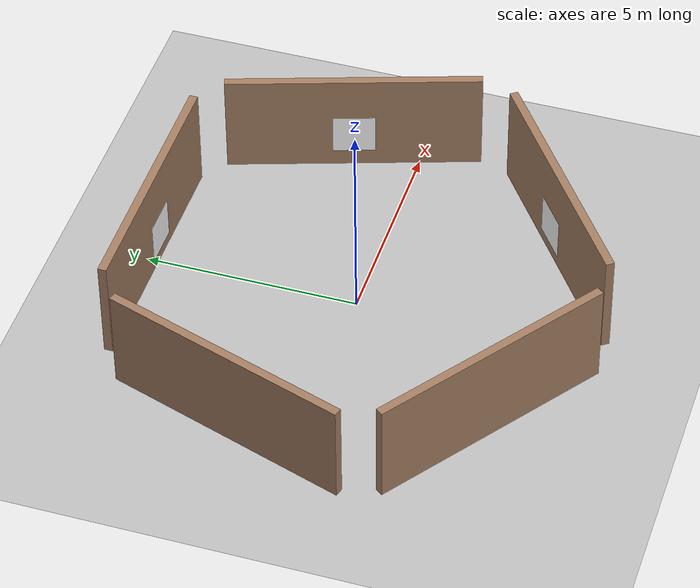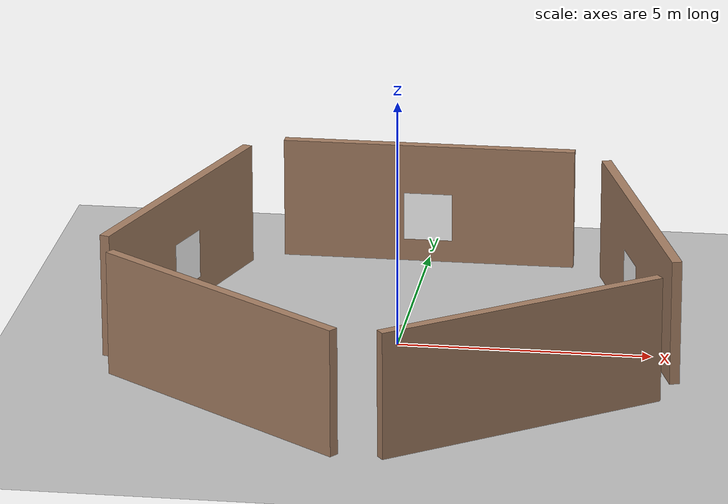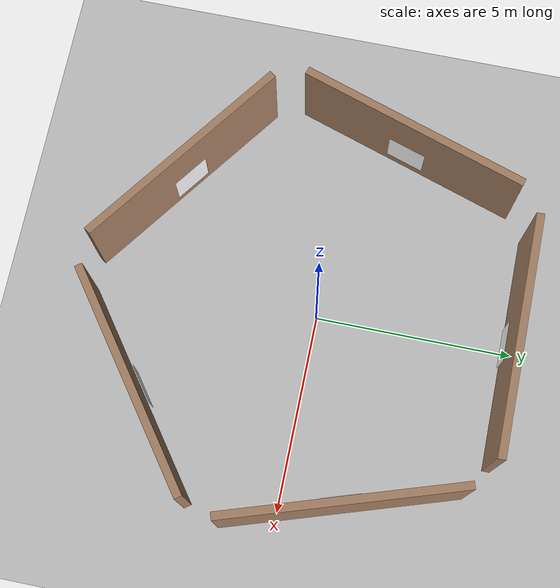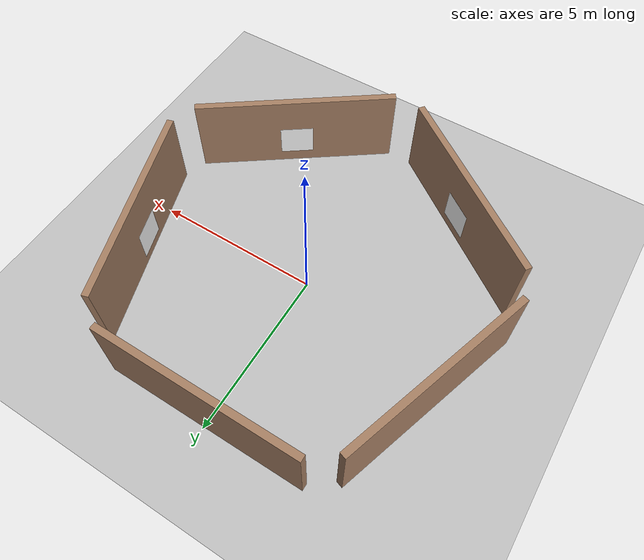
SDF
<?xml version="1.0"?>
<sdf version='1.10'>

  <world name='aruco_corridor_world'>

    <plugin name='gz::sim::systems::Physics' filename='gz-sim-physics-system'/>

    <plugin name='gz::sim::systems::UserCommands' filename='gz-sim-user-commands-system'/>

    <plugin name='gz::sim::systems::SceneBroadcaster' filename='gz-sim-scene-broadcaster-system'/>

    <plugin name='gz::sim::systems::Sensors' filename='gz-sim-sensors-system'>

      <render_engine>ogre2</render_engine>

    </plugin>

    <gravity>0 0 -9.8000000000000007</gravity>

    <magnetic_field>5.5644999999999998e-06 2.2875799999999999e-05 -4.2388400000000002e-05</magnetic_field>

    <atmosphere type='adiabatic'/>

    <physics type='ode'>

      <max_step_size>0.001</max_step_size>

      <real_time_factor>1</real_time_factor>

      <real_time_update_rate>1000</real_time_update_rate>

    </physics>

    <scene>

      <ambient>0.400000006 0.400000006 0.400000006 1</ambient>

      <background>0.699999988 0.699999988 0.699999988 1</background>

      <shadows>true</shadows>

    </scene>

    <model name='ground_plane'>

      <static>true</static>

      <link name='link'>

        <collision name='collision'>

          <geometry>

            <plane>

              <normal>0 0 1</normal>

              <size>60 60</size>

            </plane>

          </geometry>

          <surface>

            <friction>

              <ode/>

            </friction>

            <bounce/>

            <contact/>

          </surface>

        </collision>

        <visual name='visual'>

          <geometry>

            <plane>

              <normal>0 0 1</normal>

              <size>60 60</size>

            </plane>

          </geometry>

          <material>

            <ambient>0.75 0.75 0.75 1</ambient>

            <diffuse>0.75 0.75 0.75 1</diffuse>

          </material>

        </visual>

        <pose>0 0 0 0 0 0</pose>

        <inertial>

          <pose>0 0 0 0 0 0</pose>

          <mass>1</mass>

          <inertia>

            <ixx>1</ixx>

            <ixy>0</ixy>

            <ixz>0</ixz>

            <iyy>1</iyy>

            <iyz>0</iyz>

            <izz>1</izz>

          </inertia>

        </inertial>

        <enable_wind>false</enable_wind>

      </link>

      <pose>0 0 0 0 0 0</pose>

      <self_collide>false</self_collide>

    </model>

    <model name='wall_1'>

      <static>true</static>

      <pose>2.8532 -3.9271 1.25 0 0 -0.942478</pose>

      <link name='link'>

        <collision name='collision'>

          <geometry>

            <box>

              <size>0.20000000000000001 6 2.5</size>

            </box>

          </geometry>

          <surface>

            <friction>

              <ode/>

            </friction>

            <bounce/>

            <contact/>

          </surface>

        </collision>

        <visual name='visual'>

          <geometry>

            <box>

              <size>0.20000000000000001 6 2.5</size>

            </box>

          </geometry>

          <material>

            <ambient>0.65 0.50 0.39 1</ambient>

            <diffuse>0.65 0.50 0.39 1</diffuse>

          </material>

        </visual>

        <pose>0 0 0 0 0 0</pose>

        <inertial>

          <pose>0 0 0 0 0 0</pose>

          <mass>1</mass>

          <inertia>

            <ixx>1</ixx>

            <ixy>0</ixy>

            <ixz>0</ixz>

            <iyy>1</iyy>

            <iyz>0</iyz>

            <izz>1</izz>

          </inertia>

        </inertial>

        <enable_wind>false</enable_wind>

      </link>

      <self_collide>false</self_collide>

    </model>

    <include>

      <uri>file:///home/shreya/trial3_ihub/install/my_robot_bringup/share/my_robot_bringup/models/aruco_marker_0</uri>

      <name>aruco_marker_0</name>

      <pose>2.7239 -3.7491 1.0 0 0 2.199115</pose>

    </include>

    <model name='wall_2'>

      <static>true</static>

      <pose>4.6165 1.5000 1.25 0 0 0.314159</pose>

      <link name='link'>

        <collision name='collision'>

          <geometry>

            <box>

              <size>0.20000000000000001 6 2.5</size>

            </box>

          </geometry>

          <surface>

            <friction>

              <ode/>

            </friction>

            <bounce/>

            <contact/>

          </surface>

        </collision>

        <visual name='visual'>

          <geometry>

            <box>

              <size>0.20000000000000001 6 2.5</size>

            </box>

          </geometry>

          <material>

            <ambient>0.65 0.50 0.39 1</ambient>

            <diffuse>0.65 0.50 0.39 1</diffuse>

          </material>

        </visual>

        <pose>0 0 0 0 0 0</pose>

        <inertial>

          <pose>0 0 0 0 0 0</pose>

          <mass>1</mass>

          <inertia>

            <ixx>1</ixx>

            <ixy>0</ixy>

            <ixz>0</ixz>

            <iyy>1</iyy>

            <iyz>0</iyz>

            <izz>1</izz>

          </inertia>

        </inertial>

        <enable_wind>false</enable_wind>

      </link>

      <self_collide>false</self_collide>

    </model>

    <include>

      <uri>file:///home/shreya/trial3_ihub/install/my_robot_bringup/share/my_robot_bringup/models/aruco_marker_1</uri>

      <name>aruco_marker_1</name>

      <pose>4.4073 1.4320 1.0 0 0 -2.827433</pose>

    </include>

    <model name='wall_3'>

      <static>true</static>

      <pose>0.0000 4.8541 1.25 0 0 1.570796</pose>

      <link name='link'>

        <collision name='collision'>

          <geometry>

            <box>

              <size>0.20000000000000001 6 2.5</size>

            </box>

          </geometry>

          <surface>

            <friction>

              <ode/>

            </friction>

            <bounce/>

            <contact/>

          </surface>

        </collision>

        <visual name='visual'>

          <geometry>

            <box>

              <size>0.20000000000000001 6 2.5</size>

            </box>

          </geometry>

          <material>

            <ambient>0.65 0.50 0.39 1</ambient>

            <diffuse>0.65 0.50 0.39 1</diffuse>

          </material>

        </visual>

        <pose>0 0 0 0 0 0</pose>

        <inertial>

          <pose>0 0 0 0 0 0</pose>

          <mass>1</mass>

          <inertia>

            <ixx>1</ixx>

            <ixy>0</ixy>

            <ixz>0</ixz>

            <iyy>1</iyy>

            <iyz>0</iyz>

            <izz>1</izz>

          </inertia>

        </inertial>

        <enable_wind>false</enable_wind>

      </link>

      <self_collide>false</self_collide>

    </model>

    <include>

      <uri>file:///home/shreya/trial3_ihub/install/my_robot_bringup/share/my_robot_bringup/models/aruco_marker_2</uri>

      <name>aruco_marker_2</name>

      <pose>0.0000 4.6341 1.0 0 0 -1.570796</pose>

    </include>

    <model name='wall_4'>

      <static>true</static>

      <pose>-4.6165 1.5000 1.25 0 0 -3.455752</pose>

      <link name='link'>

        <collision name='collision'>

          <geometry>

            <box>

              <size>0.20000000000000001 6 2.5</size>

            </box>

          </geometry>

          <surface>

            <friction>

              <ode/>

            </friction>

            <bounce/>

            <contact/>

          </surface>

        </collision>

        <visual name='visual'>

          <geometry>

            <box>

              <size>0.20000000000000001 6 2.5</size>

            </box>

          </geometry>

          <material>

            <ambient>0.65 0.50 0.39 1</ambient>

            <diffuse>0.65 0.50 0.39 1</diffuse>

          </material>

        </visual>

        <pose>0 0 0 0 0 0</pose>

        <inertial>

          <pose>0 0 0 0 0 0</pose>

          <mass>1</mass>

          <inertia>

            <ixx>1</ixx>

            <ixy>0</ixy>

            <ixz>0</ixz>

            <iyy>1</iyy>

            <iyz>0</iyz>

            <izz>1</izz>

          </inertia>

        </inertial>

        <enable_wind>false</enable_wind>

      </link>

      <self_collide>false</self_collide>

    </model>

    <include>

      <uri>file:///home/shreya/trial3_ihub/install/my_robot_bringup/share/my_robot_bringup/models/aruco_marker_3</uri>

      <name>aruco_marker_3</name>

      <pose>-4.4073 1.4320 1.0 0 0 -0.314159</pose>

    </include>

    <model name='wall_5'>

      <static>true</static>

      <pose>-2.8532 -3.9271 1.25 0 0 -2.199115</pose>

      <link name='link'>

        <collision name='collision'>

          <geometry>

            <box>

              <size>0.20000000000000001 6 2.5</size>

            </box>

          </geometry>

          <surface>

            <friction>

              <ode/>

            </friction>

            <bounce/>

            <contact/>

          </surface>

        </collision>

        <visual name='visual'>

          <geometry>

            <box>

              <size>0.20000000000000001 6 2.5</size>

            </box>

          </geometry>

          <material>

            <ambient>0.65 0.50 0.39 1</ambient>

            <diffuse>0.65 0.50 0.39 1</diffuse>

          </material>

        </visual>

        <pose>0 0 0 0 0 0</pose>

        <inertial>

          <pose>0 0 0 0 0 0</pose>

          <mass>1</mass>

          <inertia>

            <ixx>1</ixx>

            <ixy>0</ixy>

            <ixz>0</ixz>

            <iyy>1</iyy>

            <iyz>0</iyz>

            <izz>1</izz>

          </inertia>

        </inertial>

        <enable_wind>false</enable_wind>

      </link>

      <self_collide>false</self_collide>

    </model>

    <include>

      <uri>file:///home/shreya/trial3_ihub/install/my_robot_bringup/share/my_robot_bringup/models/aruco_marker_4</uri>

      <name>aruco_marker_4</name>

      <pose>-2.7239 -3.7491 1.0 0 0 0.942478</pose>

    </include>

    <light name='sun' type='directional'>

      <pose>0 0 10 0 0 0</pose>

      <cast_shadows>false</cast_shadows>

      <intensity>1</intensity>

      <direction>-0.40000000000000002 0.20000000000000001 -1</direction>

      <diffuse>1 1 1 1</diffuse>

      <specular>0.300000012 0.300000012 0.300000012 1</specular>

      <attenuation>

        <range>10</range>

        <linear>1</linear>

        <constant>1</constant>

        <quadratic>0</quadratic>

      </attenuation>

      <spot>

        <inner_angle>0</inner_angle>

        <outer_angle>0</outer_angle>

        <falloff>0</falloff>

      </spot>

    </light>

  </world>

</sdf>

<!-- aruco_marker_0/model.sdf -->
<sdf version="1.8">
  <model name="aruco_marker_0">
    <static>true</static>
    <link name="link">
      <collision name="backing_collision">
        <pose>0 0 0 0 1.5708 0</pose>
        <geometry>
          <box>
            <size>0.03 1.1 1.1</size>
          </box>
        </geometry>
      </collision>
      <visual name="marker_visual">
        <pose>-0.02 0 0 0 1.5708 0</pose>
        <geometry>
          <plane>
            <normal>0 0 1</normal>
            <size>1.0 1.0</size>
          </plane>
        </geometry>
        <material>
          <ambient>1 1 1 1</ambient>
          <diffuse>1 1 1 1</diffuse>
          <specular>0 0 0 1</specular>
          <pbr>
            <metal>
              <albedo_map>model://aruco_marker_0/materials/textures/aruco_marker_0.png</albedo_map>
              <roughness>1.0</roughness>
              <metalness>0.0</metalness>
            </metal>
          </pbr>
        </material>
      </visual>
    </link>
  </model>
</sdf>

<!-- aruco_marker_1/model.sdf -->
<sdf version="1.8">
  <model name="aruco_marker_1">
    <static>true</static>
    <link name="link">
      <collision name="backing_collision">
        <pose>0 0 0 0 1.5708 0</pose>
        <geometry>
          <box>
            <size>0.03 1.1 1.1</size>
          </box>
        </geometry>
      </collision>
      <visual name="marker_visual">
        <pose>-0.02 0 0 0 1.5708 0</pose>
        <geometry>
          <plane>
            <normal>0 0 1</normal>
            <size>1.0 1.0</size>
          </plane>
        </geometry>
        <material>
          <ambient>1 1 1 1</ambient>
          <diffuse>1 1 1 1</diffuse>
          <specular>0 0 0 1</specular>
          <pbr>
            <metal>
              <albedo_map>model://aruco_marker_1/materials/textures/aruco_marker_1.png</albedo_map>
              <roughness>1.0</roughness>
              <metalness>0.0</metalness>
            </metal>
          </pbr>
        </material>
      </visual>
    </link>
  </model>
</sdf>

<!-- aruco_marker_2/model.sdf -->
<sdf version="1.8">
  <model name="aruco_marker_2">
    <static>true</static>
    <link name="link">
      <collision name="backing_collision">
        <pose>0 0 0 0 1.5708 0</pose>
        <geometry>
          <box>
            <size>0.03 1.1 1.1</size>
          </box>
        </geometry>
      </collision>
      <visual name="marker_visual">
        <pose>-0.02 0 0 0 1.5708 0</pose>
        <geometry>
          <plane>
            <normal>0 0 1</normal>
            <size>1.0 1.0</size>
          </plane>
        </geometry>
        <material>
          <ambient>1 1 1 1</ambient>
          <diffuse>1 1 1 1</diffuse>
          <specular>0 0 0 1</specular>
          <pbr>
            <metal>
              <albedo_map>model://aruco_marker_2/materials/textures/aruco_marker_2.png</albedo_map>
              <roughness>1.0</roughness>
              <metalness>0.0</metalness>
            </metal>
          </pbr>
        </material>
      </visual>
    </link>
  </model>
</sdf>

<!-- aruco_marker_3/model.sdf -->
<sdf version="1.8">
  <model name="aruco_marker_3">
    <static>true</static>
    <link name="link">
      <collision name="backing_collision">
        <pose>0 0 0 0 1.5708 0</pose>
        <geometry>
          <box>
            <size>0.03 1.1 1.1</size>
          </box>
        </geometry>
      </collision>
      <visual name="marker_visual">
        <pose>-0.02 0 0 0 1.5708 0</pose>
        <geometry>
          <plane>
            <normal>0 0 1</normal>
            <size>1.0 1.0</size>
          </plane>
        </geometry>
        <material>
          <ambient>1 1 1 1</ambient>
          <diffuse>1 1 1 1</diffuse>
          <specular>0 0 0 1</specular>
          <pbr>
            <metal>
              <albedo_map>model://aruco_marker_3/materials/textures/aruco_marker_3.png</albedo_map>
              <roughness>1.0</roughness>
              <metalness>0.0</metalness>
            </metal>
          </pbr>
        </material>
      </visual>
    </link>
  </model>
</sdf>

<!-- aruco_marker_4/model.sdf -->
<sdf version="1.8">
  <model name="aruco_marker_4">
    <static>true</static>
    <link name="link">
      <collision name="backing_collision">
        <pose>0 0 0 0 1.5708 0</pose>
        <geometry>
          <box>
            <size>0.03 1.1 1.1</size>
          </box>
        </geometry>
      </collision>
      <visual name="marker_visual">
        <pose>-0.02 0 0 0 1.5708 0</pose>
        <geometry>
          <plane>
            <normal>0 0 1</normal>
            <size>1.0 1.0</size>
          </plane>
        </geometry>
        <material>
          <ambient>1 1 1 1</ambient>
          <diffuse>1 1 1 1</diffuse>
          <specular>0 0 0 1</specular>
          <pbr>
            <metal>
              <albedo_map>model://aruco_marker_4/materials/textures/aruco_marker_4.png</albedo_map>
              <roughness>1.0</roughness>
              <metalness>0.0</metalness>
            </metal>
          </pbr>
        </material>
      </visual>
    </link>
  </model>
</sdf>
